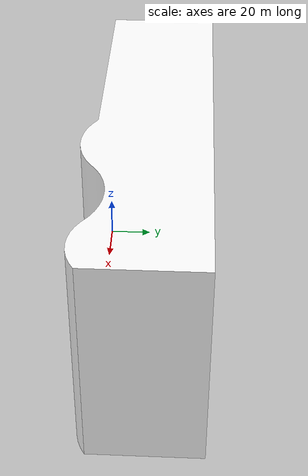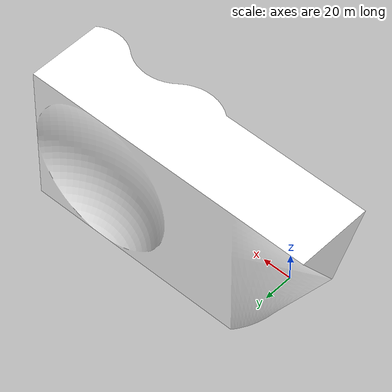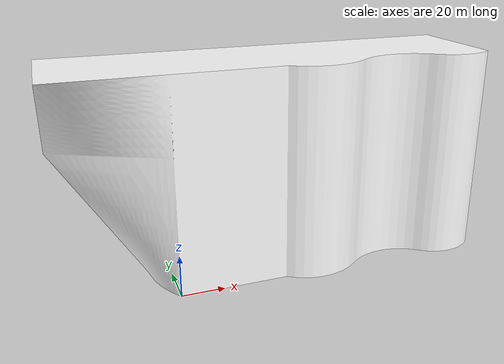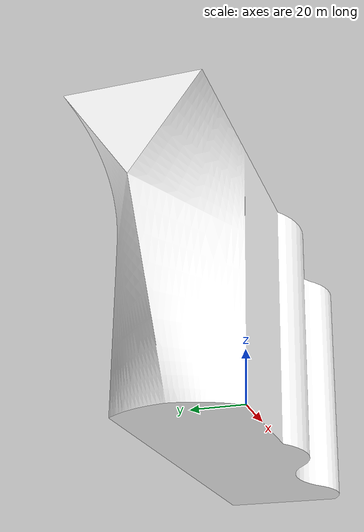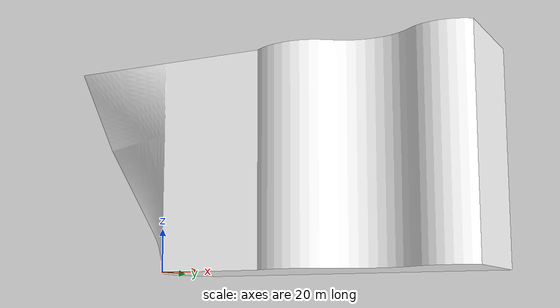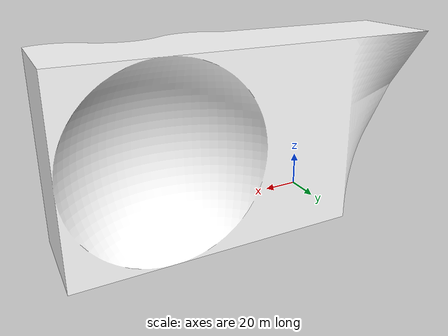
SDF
<?xml version="1.0"?>
<sdf version="1.6">
  <model name="1">
    <pose>0 0 0 0 0 0</pose>
    <static>true</static>

    <link name="link">
      <!-- 视觉外观 -->
      <visual name="visual">
        <geometry>
          <mesh>
            <uri>model://model_for_demo.dae</uri>
            <scale>1.0 1.0 1.0</scale>
          </mesh>
        </geometry>
        <!-- 棋盘格纹理材质 - 为VINS提供丰富特征点 -->
        <material>
          <ambient>1 1 1 1</ambient>
          <diffuse>1 1 1 1</diffuse>
          <specular>0.1 0.1 0.1 1</specular>
          <emissive>0 0 0 0</emissive>
          <script>
            <uri>model://textures/checkerboard_material.material</uri>
            <name>Checkerboard/Pattern</name>
          </script>
        </material>
      </visual>

      <!-- 碰撞几何体 - 修改为与视觉模型一致的mesh，防止深度相机穿模 -->
      <collision name="collision">
        <geometry>
          <mesh>
            <uri>model://model_for_demo.dae</uri>
            <scale>1.0 1.0 1.0</scale>
          </mesh>
        </geometry>
      </collision>

      <!-- 物理属性 -->
      <inertial>
        <mass>2.409899</mass>
        <pose>0.999404 0.000000 0.003925 0 0 0</pose>
        <inertia>

              <ixx>1.612918</ixx>
              <ixy>0.0</ixy>
              <ixz>0.0</ixz>
              <iyy>8.042190</iyy>
              <iyz>0.0</iyz>
              <izz>8.035872</izz>
        </inertia>
      </inertial>
    </link>
  </model>
</sdf>
